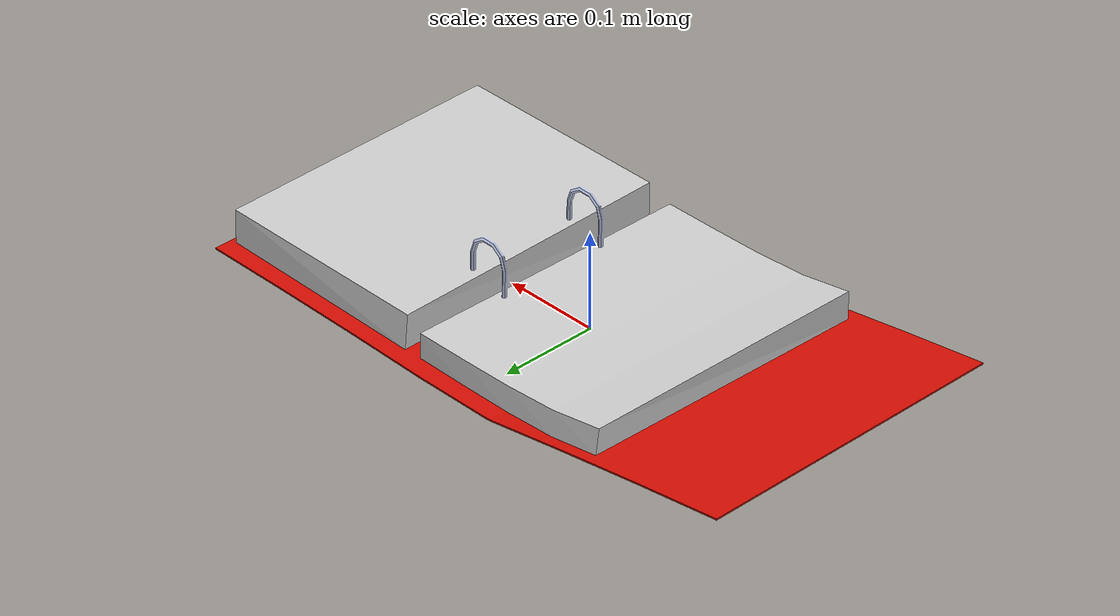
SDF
<?xml version='1.0'?>
<sdf version="1.4">
	<model name="folder_open">
		<static>1</static>
		<link name="link">
			<visual name="mesh">
				<geometry>
					<mesh>
						<uri>model://meshes/folder_open.dae</uri>
					</mesh>
				</geometry>
			</visual>
			<collision name="box">
				<pose>0 0 0.025 0 0 0</pose>
				<geometry>
					<box>
						<size>0.63 0.32 0.05</size>
					</box>
				</geometry>
			</collision>
		</link>
	</model>
</sdf>
